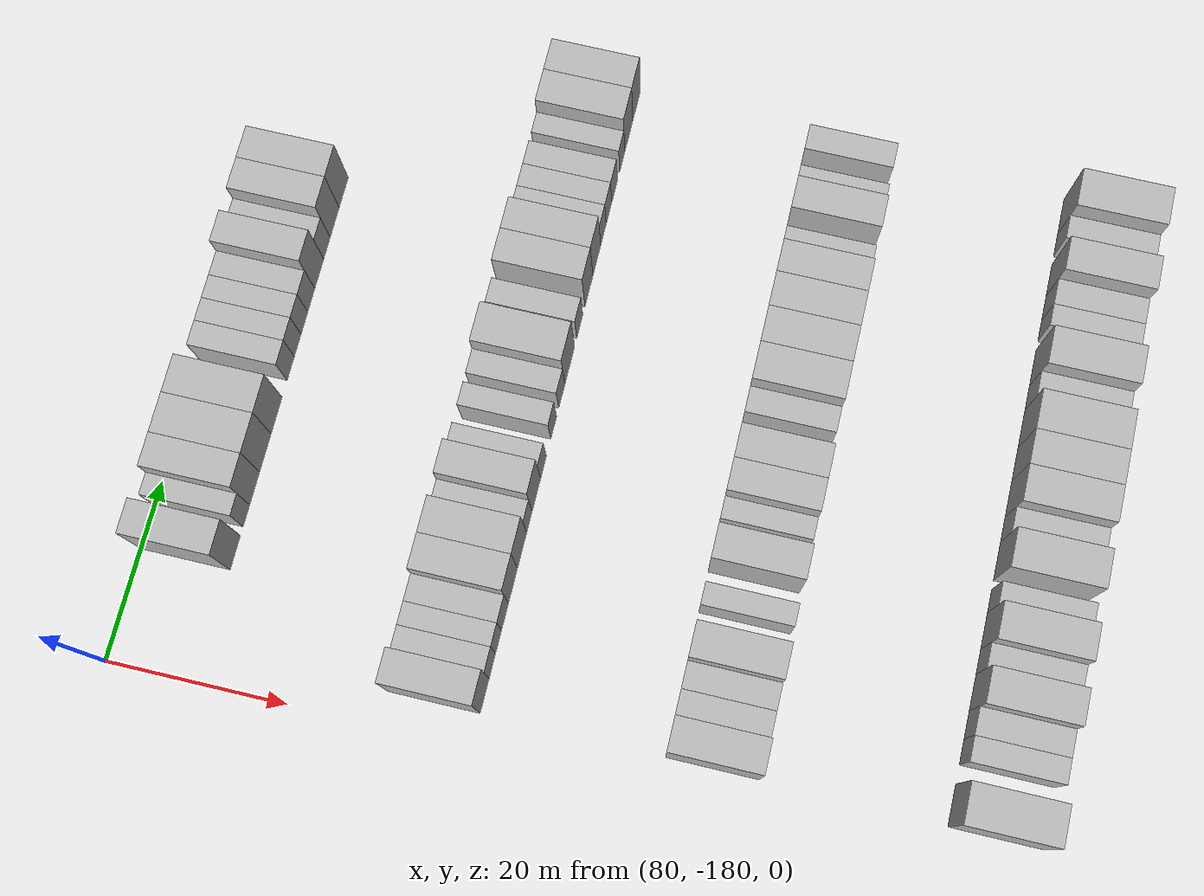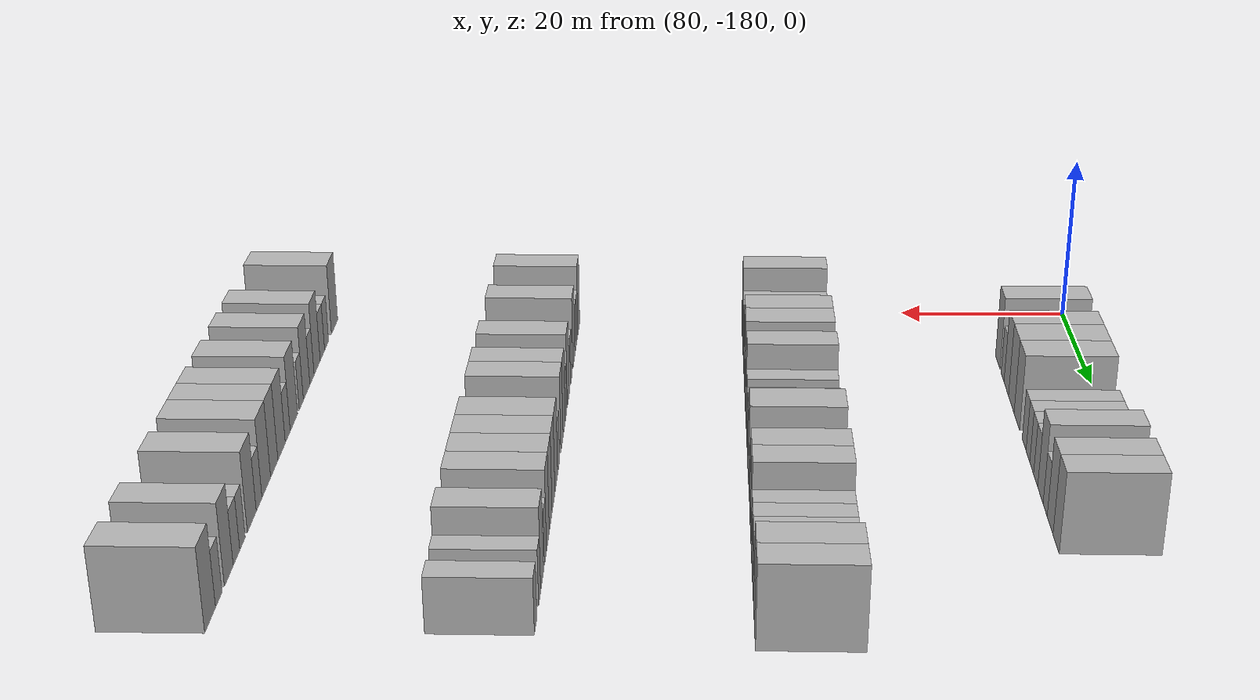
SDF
<sdf version="1.6">
 <world name="default">
  <model name="building_526">
   <static>1</static>
   <pose>85.0000 -165.6904 0 0.000000 0.000000 0.000000</pose>
   <link name="link">
    <pose>0 0 4.50 0 0 0</pose>
    <collision name="collision"><geometry><box><size>10.0000 3.8303 9.0000</size></box></geometry></collision>
    <visual name="visual">
     <cast_shadows>0</cast_shadows>
     <geometry><box><size>10.0000 3.8303 9.0000</size></box></geometry>
     <material>
      <script>
       <uri>model://HANNAS_wall/materials/scripts</uri>
       <uri>model://HANNAS_wall/materials/textures</uri>
       <name>vrc/HANNAS_wall</name>
      </script>
     </material>
    </visual>
   </link>
  </model>
  <model name="building_527">
   <static>1</static>
   <pose>85.0000 -161.5397 0 0.000000 0.000000 0.000000</pose>
   <link name="link">
    <pose>0 0 3.00 0 0 0</pose>
    <collision name="collision"><geometry><box><size>10.0000 2.4710 6.0000</size></box></geometry></collision>
    <visual name="visual">
     <cast_shadows>0</cast_shadows>
     <geometry><box><size>10.0000 2.4710 6.0000</size></box></geometry>
     <material>
      <script>
       <uri>model://HANNAS_wall/materials/scripts</uri>
       <uri>model://HANNAS_wall/materials/textures</uri>
       <name>vrc/HANNAS_wall</name>
      </script>
     </material>
    </visual>
   </link>
  </model>
  <model name="building_528">
   <static>1</static>
   <pose>85.0000 -158.4383 0 0.000000 0.000000 0.000000</pose>
   <link name="link">
    <pose>0 0 4.50 0 0 0</pose>
    <collision name="collision"><geometry><box><size>10.0000 3.7319 9.0000</size></box></geometry></collision>
    <visual name="visual">
     <cast_shadows>0</cast_shadows>
     <geometry><box><size>10.0000 3.7319 9.0000</size></box></geometry>
     <material>
      <script>
       <uri>model://HANNAS_wall/materials/scripts</uri>
       <uri>model://HANNAS_wall/materials/textures</uri>
       <name>vrc/HANNAS_wall</name>
      </script>
     </material>
    </visual>
   </link>
  </model>
  <model name="building_529">
   <static>1</static>
   <pose>85.0000 -154.3488 0 0.000000 0.000000 0.000000</pose>
   <link name="link">
    <pose>0 0 4.50 0 0 0</pose>
    <collision name="collision"><geometry><box><size>10.0000 4.4470 9.0000</size></box></geometry></collision>
    <visual name="visual">
     <cast_shadows>0</cast_shadows>
     <geometry><box><size>10.0000 4.4470 9.0000</size></box></geometry>
     <material>
      <script>
       <uri>model://HANNAS_wall/materials/scripts</uri>
       <uri>model://HANNAS_wall/materials/textures</uri>
       <name>vrc/HANNAS_wall</name>
      </script>
     </material>
    </visual>
   </link>
  </model>
  <model name="building_530">
   <static>1</static>
   <pose>85.0000 -149.9912 0 0.000000 0.000000 0.000000</pose>
   <link name="link">
    <pose>0 0 4.50 0 0 0</pose>
    <collision name="collision"><geometry><box><size>10.0000 4.2682 9.0000</size></box></geometry></collision>
    <visual name="visual">
     <cast_shadows>0</cast_shadows>
     <geometry><box><size>10.0000 4.2682 9.0000</size></box></geometry>
     <material>
      <script>
       <uri>model://HANNAS_wall/materials/scripts</uri>
       <uri>model://HANNAS_wall/materials/textures</uri>
       <name>vrc/HANNAS_wall</name>
      </script>
     </material>
    </visual>
   </link>
  </model>
  <model name="building_531">
   <static>1</static>
   <pose>85.0000 -144.4446 0 0.000000 0.000000 0.000000</pose>
   <link name="link">
    <pose>0 0 3.00 0 0 0</pose>
    <collision name="collision"><geometry><box><size>10.0000 2.8250 6.0000</size></box></geometry></collision>
    <visual name="visual">
     <cast_shadows>0</cast_shadows>
     <geometry><box><size>10.0000 2.8250 6.0000</size></box></geometry>
     <material>
      <script>
       <uri>model://HANNAS_wall/materials/scripts</uri>
       <uri>model://HANNAS_wall/materials/textures</uri>
       <name>vrc/HANNAS_wall</name>
      </script>
     </material>
    </visual>
   </link>
  </model>
  <model name="building_532">
   <static>1</static>
   <pose>85.0000 -141.7109 0 0.000000 0.000000 0.000000</pose>
   <link name="link">
    <pose>0 0 3.00 0 0 0</pose>
    <collision name="collision"><geometry><box><size>10.0000 2.6423 6.0000</size></box></geometry></collision>
    <visual name="visual">
     <cast_shadows>0</cast_shadows>
     <geometry><box><size>10.0000 2.6423 6.0000</size></box></geometry>
     <material>
      <script>
       <uri>model://HANNAS_wall/materials/scripts</uri>
       <uri>model://HANNAS_wall/materials/textures</uri>
       <name>vrc/HANNAS_wall</name>
      </script>
     </material>
    </visual>
   </link>
  </model>
  <model name="building_533">
   <static>1</static>
   <pose>85.0000 -139.0458 0 0.000000 0.000000 0.000000</pose>
   <link name="link">
    <pose>0 0 3.00 0 0 0</pose>
    <collision name="collision"><geometry><box><size>10.0000 2.6880 6.0000</size></box></geometry></collision>
    <visual name="visual">
     <cast_shadows>0</cast_shadows>
     <geometry><box><size>10.0000 2.6880 6.0000</size></box></geometry>
     <material>
      <script>
       <uri>model://HANNAS_wall/materials/scripts</uri>
       <uri>model://HANNAS_wall/materials/textures</uri>
       <name>vrc/HANNAS_wall</name>
      </script>
     </material>
    </visual>
   </link>
  </model>
  <model name="building_534">
   <static>1</static>
   <pose>85.0000 -136.2839 0 0.000000 0.000000 0.000000</pose>
   <link name="link">
    <pose>0 0 3.00 0 0 0</pose>
    <collision name="collision"><geometry><box><size>10.0000 2.8358 6.0000</size></box></geometry></collision>
    <visual name="visual">
     <cast_shadows>0</cast_shadows>
     <geometry><box><size>10.0000 2.8358 6.0000</size></box></geometry>
     <material>
      <script>
       <uri>model://HANNAS_wall/materials/scripts</uri>
       <uri>model://HANNAS_wall/materials/textures</uri>
       <name>vrc/HANNAS_wall</name>
      </script>
     </material>
    </visual>
   </link>
  </model>
  <model name="building_535">
   <static>1</static>
   <pose>85.0000 -133.0587 0 0.000000 0.000000 0.000000</pose>
   <link name="link">
    <pose>0 0 4.50 0 0 0</pose>
    <collision name="collision"><geometry><box><size>10.0000 3.6145 9.0000</size></box></geometry></collision>
    <visual name="visual">
     <cast_shadows>0</cast_shadows>
     <geometry><box><size>10.0000 3.6145 9.0000</size></box></geometry>
     <material>
      <script>
       <uri>model://HANNAS_wall/materials/scripts</uri>
       <uri>model://HANNAS_wall/materials/textures</uri>
       <name>vrc/HANNAS_wall</name>
      </script>
     </material>
    </visual>
   </link>
  </model>
  <model name="building_536">
   <static>1</static>
   <pose>85.0000 -129.9210 0 0.000000 0.000000 0.000000</pose>
   <link name="link">
    <pose>0 0 3.00 0 0 0</pose>
    <collision name="collision"><geometry><box><size>10.0000 2.6611 6.0000</size></box></geometry></collision>
    <visual name="visual">
     <cast_shadows>0</cast_shadows>
     <geometry><box><size>10.0000 2.6611 6.0000</size></box></geometry>
     <material>
      <script>
       <uri>model://HANNAS_wall/materials/scripts</uri>
       <uri>model://HANNAS_wall/materials/textures</uri>
       <name>vrc/HANNAS_wall</name>
      </script>
     </material>
    </visual>
   </link>
  </model>
  <model name="building_537">
   <static>1</static>
   <pose>85.0000 -126.7513 0 0.000000 0.000000 0.000000</pose>
   <link name="link">
    <pose>0 0 4.50 0 0 0</pose>
    <collision name="collision"><geometry><box><size>10.0000 3.6784 9.0000</size></box></geometry></collision>
    <visual name="visual">
     <cast_shadows>0</cast_shadows>
     <geometry><box><size>10.0000 3.6784 9.0000</size></box></geometry>
     <material>
      <script>
       <uri>model://HANNAS_wall/materials/scripts</uri>
       <uri>model://HANNAS_wall/materials/textures</uri>
       <name>vrc/HANNAS_wall</name>
      </script>
     </material>
    </visual>
   </link>
  </model>
  <model name="building_538">
   <static>1</static>
   <pose>85.0000 -123.0262 0 0.000000 0.000000 0.000000</pose>
   <link name="link">
    <pose>0 0 4.50 0 0 0</pose>
    <collision name="collision"><geometry><box><size>10.0000 3.7718 9.0000</size></box></geometry></collision>
    <visual name="visual">
     <cast_shadows>0</cast_shadows>
     <geometry><box><size>10.0000 3.7718 9.0000</size></box></geometry>
     <material>
      <script>
       <uri>model://HANNAS_wall/materials/scripts</uri>
       <uri>model://HANNAS_wall/materials/textures</uri>
       <name>vrc/HANNAS_wall</name>
      </script>
     </material>
    </visual>
   </link>
  </model>
  <model name="building_757">
   <static>1</static>
   <pose>115.0000 -174.3454 0 0.000000 0.000000 0.000000</pose>
   <link name="link">
    <pose>0 0 4.50 0 0 0</pose>
    <collision name="collision"><geometry><box><size>10.0000 3.7316 9.0000</size></box></geometry></collision>
    <visual name="visual">
     <cast_shadows>0</cast_shadows>
     <geometry><box><size>10.0000 3.7316 9.0000</size></box></geometry>
     <material>
      <script>
       <uri>model://HANNAS_wall/materials/scripts</uri>
       <uri>model://HANNAS_wall/materials/textures</uri>
       <name>vrc/HANNAS_wall</name>
      </script>
     </material>
    </visual>
   </link>
  </model>
  <model name="building_758">
   <static>1</static>
   <pose>115.0000 -171.1223 0 0.000000 0.000000 0.000000</pose>
   <link name="link">
    <pose>0 0 3.00 0 0 0</pose>
    <collision name="collision"><geometry><box><size>10.0000 2.7147 6.0000</size></box></geometry></collision>
    <visual name="visual">
     <cast_shadows>0</cast_shadows>
     <geometry><box><size>10.0000 2.7147 6.0000</size></box></geometry>
     <material>
      <script>
       <uri>model://HANNAS_wall/materials/scripts</uri>
       <uri>model://HANNAS_wall/materials/textures</uri>
       <name>vrc/HANNAS_wall</name>
      </script>
     </material>
    </visual>
   </link>
  </model>
  <model name="building_759">
   <static>1</static>
   <pose>115.0000 -168.4990 0 0.000000 0.000000 0.000000</pose>
   <link name="link">
    <pose>0 0 3.00 0 0 0</pose>
    <collision name="collision"><geometry><box><size>10.0000 2.5319 6.0000</size></box></geometry></collision>
    <visual name="visual">
     <cast_shadows>0</cast_shadows>
     <geometry><box><size>10.0000 2.5319 6.0000</size></box></geometry>
     <material>
      <script>
       <uri>model://HANNAS_wall/materials/scripts</uri>
       <uri>model://HANNAS_wall/materials/textures</uri>
       <name>vrc/HANNAS_wall</name>
      </script>
     </material>
    </visual>
   </link>
  </model>
  <model name="building_760">
   <static>1</static>
   <pose>115.0000 -165.7537 0 0.000000 0.000000 0.000000</pose>
   <link name="link">
    <pose>0 0 3.00 0 0 0</pose>
    <collision name="collision"><geometry><box><size>10.0000 2.9588 6.0000</size></box></geometry></collision>
    <visual name="visual">
     <cast_shadows>0</cast_shadows>
     <geometry><box><size>10.0000 2.9588 6.0000</size></box></geometry>
     <material>
      <script>
       <uri>model://HANNAS_wall/materials/scripts</uri>
       <uri>model://HANNAS_wall/materials/textures</uri>
       <name>vrc/HANNAS_wall</name>
      </script>
     </material>
    </visual>
   </link>
  </model>
  <model name="building_761">
   <static>1</static>
   <pose>115.0000 -162.3380 0 0.000000 0.000000 0.000000</pose>
   <link name="link">
    <pose>0 0 4.50 0 0 0</pose>
    <collision name="collision"><geometry><box><size>10.0000 3.8726 9.0000</size></box></geometry></collision>
    <visual name="visual">
     <cast_shadows>0</cast_shadows>
     <geometry><box><size>10.0000 3.8726 9.0000</size></box></geometry>
     <material>
      <script>
       <uri>model://HANNAS_wall/materials/scripts</uri>
       <uri>model://HANNAS_wall/materials/textures</uri>
       <name>vrc/HANNAS_wall</name>
      </script>
     </material>
    </visual>
   </link>
  </model>
  <model name="building_762">
   <static>1</static>
   <pose>115.0000 -158.4075 0 0.000000 0.000000 0.000000</pose>
   <link name="link">
    <pose>0 0 4.50 0 0 0</pose>
    <collision name="collision"><geometry><box><size>10.0000 3.9883 9.0000</size></box></geometry></collision>
    <visual name="visual">
     <cast_shadows>0</cast_shadows>
     <geometry><box><size>10.0000 3.9883 9.0000</size></box></geometry>
     <material>
      <script>
       <uri>model://HANNAS_wall/materials/scripts</uri>
       <uri>model://HANNAS_wall/materials/textures</uri>
       <name>vrc/HANNAS_wall</name>
      </script>
     </material>
    </visual>
   </link>
  </model>
  <model name="building_763">
   <static>1</static>
   <pose>115.0000 -155.1950 0 0.000000 0.000000 0.000000</pose>
   <link name="link">
    <pose>0 0 3.00 0 0 0</pose>
    <collision name="collision"><geometry><box><size>10.0000 2.4366 6.0000</size></box></geometry></collision>
    <visual name="visual">
     <cast_shadows>0</cast_shadows>
     <geometry><box><size>10.0000 2.4366 6.0000</size></box></geometry>
     <material>
      <script>
       <uri>model://HANNAS_wall/materials/scripts</uri>
       <uri>model://HANNAS_wall/materials/textures</uri>
       <name>vrc/HANNAS_wall</name>
      </script>
     </material>
    </visual>
   </link>
  </model>
  <model name="building_764">
   <static>1</static>
   <pose>115.0000 -152.1132 0 0.000000 0.000000 0.000000</pose>
   <link name="link">
    <pose>0 0 4.50 0 0 0</pose>
    <collision name="collision"><geometry><box><size>10.0000 3.7271 9.0000</size></box></geometry></collision>
    <visual name="visual">
     <cast_shadows>0</cast_shadows>
     <geometry><box><size>10.0000 3.7271 9.0000</size></box></geometry>
     <material>
      <script>
       <uri>model://HANNAS_wall/materials/scripts</uri>
       <uri>model://HANNAS_wall/materials/textures</uri>
       <name>vrc/HANNAS_wall</name>
      </script>
     </material>
    </visual>
   </link>
  </model>
  <model name="building_765">
   <static>1</static>
   <pose>115.0000 -148.9574 0 0.000000 0.000000 0.000000</pose>
   <link name="link">
    <pose>0 0 3.00 0 0 0</pose>
    <collision name="collision"><geometry><box><size>10.0000 2.5844 6.0000</size></box></geometry></collision>
    <visual name="visual">
     <cast_shadows>0</cast_shadows>
     <geometry><box><size>10.0000 2.5844 6.0000</size></box></geometry>
     <material>
      <script>
       <uri>model://HANNAS_wall/materials/scripts</uri>
       <uri>model://HANNAS_wall/materials/textures</uri>
       <name>vrc/HANNAS_wall</name>
      </script>
     </material>
    </visual>
   </link>
  </model>
  <model name="building_766">
   <static>1</static>
   <pose>115.0000 -144.3546 0 0.000000 0.000000 0.000000</pose>
   <link name="link">
    <pose>0 0 3.00 0 0 0</pose>
    <collision name="collision"><geometry><box><size>10.0000 2.6212 6.0000</size></box></geometry></collision>
    <visual name="visual">
     <cast_shadows>0</cast_shadows>
     <geometry><box><size>10.0000 2.6212 6.0000</size></box></geometry>
     <material>
      <script>
       <uri>model://HANNAS_wall/materials/scripts</uri>
       <uri>model://HANNAS_wall/materials/textures</uri>
       <name>vrc/HANNAS_wall</name>
      </script>
     </material>
    </visual>
   </link>
  </model>
  <model name="building_767">
   <static>1</static>
   <pose>115.0000 -140.6502 0 0.000000 0.000000 0.000000</pose>
   <link name="link">
    <pose>0 0 3.00 0 0 0</pose>
    <collision name="collision"><geometry><box><size>10.0000 2.7877 6.0000</size></box></geometry></collision>
    <visual name="visual">
     <cast_shadows>0</cast_shadows>
     <geometry><box><size>10.0000 2.7877 6.0000</size></box></geometry>
     <material>
      <script>
       <uri>model://HANNAS_wall/materials/scripts</uri>
       <uri>model://HANNAS_wall/materials/textures</uri>
       <name>vrc/HANNAS_wall</name>
      </script>
     </material>
    </visual>
   </link>
  </model>
  <model name="building_768">
   <static>1</static>
   <pose>115.0000 -137.0310 0 0.000000 0.000000 0.000000</pose>
   <link name="link">
    <pose>0 0 4.50 0 0 0</pose>
    <collision name="collision"><geometry><box><size>10.0000 4.4507 9.0000</size></box></geometry></collision>
    <visual name="visual">
     <cast_shadows>0</cast_shadows>
     <geometry><box><size>10.0000 4.4507 9.0000</size></box></geometry>
     <material>
      <script>
       <uri>model://HANNAS_wall/materials/scripts</uri>
       <uri>model://HANNAS_wall/materials/textures</uri>
       <name>vrc/HANNAS_wall</name>
      </script>
     </material>
    </visual>
   </link>
  </model>
  <model name="building_769">
   <static>1</static>
   <pose>115.0000 -132.3982 0 0.000000 0.000000 0.000000</pose>
   <link name="link">
    <pose>0 0 3.00 0 0 0</pose>
    <collision name="collision"><geometry><box><size>10.0000 2.8148 6.0000</size></box></geometry></collision>
    <visual name="visual">
     <cast_shadows>0</cast_shadows>
     <geometry><box><size>10.0000 2.8148 6.0000</size></box></geometry>
     <material>
      <script>
       <uri>model://HANNAS_wall/materials/scripts</uri>
       <uri>model://HANNAS_wall/materials/textures</uri>
       <name>vrc/HANNAS_wall</name>
      </script>
     </material>
    </visual>
   </link>
  </model>
  <model name="building_770">
   <static>1</static>
   <pose>115.0000 -128.1190 0 0.000000 0.000000 0.000000</pose>
   <link name="link">
    <pose>0 0 4.50 0 0 0</pose>
    <collision name="collision"><geometry><box><size>10.0000 3.7436 9.0000</size></box></geometry></collision>
    <visual name="visual">
     <cast_shadows>0</cast_shadows>
     <geometry><box><size>10.0000 3.7436 9.0000</size></box></geometry>
     <material>
      <script>
       <uri>model://HANNAS_wall/materials/scripts</uri>
       <uri>model://HANNAS_wall/materials/textures</uri>
       <name>vrc/HANNAS_wall</name>
      </script>
     </material>
    </visual>
   </link>
  </model>
  <model name="building_771">
   <static>1</static>
   <pose>115.0000 -124.4085 0 0.000000 0.000000 0.000000</pose>
   <link name="link">
    <pose>0 0 4.50 0 0 0</pose>
    <collision name="collision"><geometry><box><size>10.0000 3.6773 9.0000</size></box></geometry></collision>
    <visual name="visual">
     <cast_shadows>0</cast_shadows>
     <geometry><box><size>10.0000 3.6773 9.0000</size></box></geometry>
     <material>
      <script>
       <uri>model://HANNAS_wall/materials/scripts</uri>
       <uri>model://HANNAS_wall/materials/textures</uri>
       <name>vrc/HANNAS_wall</name>
      </script>
     </material>
    </visual>
   </link>
  </model>
  <model name="building_772">
   <static>1</static>
   <pose>115.0000 -121.2611 0 0.000000 0.000000 0.000000</pose>
   <link name="link">
    <pose>0 0 3.00 0 0 0</pose>
    <collision name="collision"><geometry><box><size>10.0000 2.6176 6.0000</size></box></geometry></collision>
    <visual name="visual">
     <cast_shadows>0</cast_shadows>
     <geometry><box><size>10.0000 2.6176 6.0000</size></box></geometry>
     <material>
      <script>
       <uri>model://HANNAS_wall/materials/scripts</uri>
       <uri>model://HANNAS_wall/materials/textures</uri>
       <name>vrc/HANNAS_wall</name>
      </script>
     </material>
    </visual>
   </link>
  </model>
  <model name="building_773">
   <static>1</static>
   <pose>115.0000 -118.6068 0 0.000000 0.000000 0.000000</pose>
   <link name="link">
    <pose>0 0 3.00 0 0 0</pose>
    <collision name="collision"><geometry><box><size>10.0000 2.6911 6.0000</size></box></geometry></collision>
    <visual name="visual">
     <cast_shadows>0</cast_shadows>
     <geometry><box><size>10.0000 2.6911 6.0000</size></box></geometry>
     <material>
      <script>
       <uri>model://HANNAS_wall/materials/scripts</uri>
       <uri>model://HANNAS_wall/materials/textures</uri>
       <name>vrc/HANNAS_wall</name>
      </script>
     </material>
    </visual>
   </link>
  </model>
  <model name="building_774">
   <static>1</static>
   <pose>115.0000 -115.8497 0 0.000000 0.000000 0.000000</pose>
   <link name="link">
    <pose>0 0 3.00 0 0 0</pose>
    <collision name="collision"><geometry><box><size>10.0000 2.8231 6.0000</size></box></geometry></collision>
    <visual name="visual">
     <cast_shadows>0</cast_shadows>
     <geometry><box><size>10.0000 2.8231 6.0000</size></box></geometry>
     <material>
      <script>
       <uri>model://HANNAS_wall/materials/scripts</uri>
       <uri>model://HANNAS_wall/materials/textures</uri>
       <name>vrc/HANNAS_wall</name>
      </script>
     </material>
    </visual>
   </link>
  </model>
  <model name="building_775">
   <static>1</static>
   <pose>115.0000 -112.1913 0 0.000000 0.000000 0.000000</pose>
   <link name="link">
    <pose>0 0 3.00 0 0 0</pose>
    <collision name="collision"><geometry><box><size>10.0000 2.4937 6.0000</size></box></geometry></collision>
    <visual name="visual">
     <cast_shadows>0</cast_shadows>
     <geometry><box><size>10.0000 2.4937 6.0000</size></box></geometry>
     <material>
      <script>
       <uri>model://HANNAS_wall/materials/scripts</uri>
       <uri>model://HANNAS_wall/materials/textures</uri>
       <name>vrc/HANNAS_wall</name>
      </script>
     </material>
    </visual>
   </link>
  </model>
  <model name="building_776">
   <static>1</static>
   <pose>115.0000 -109.0128 0 0.000000 0.000000 0.000000</pose>
   <link name="link">
    <pose>0 0 4.50 0 0 0</pose>
    <collision name="collision"><geometry><box><size>10.0000 3.8631 9.0000</size></box></geometry></collision>
    <visual name="visual">
     <cast_shadows>0</cast_shadows>
     <geometry><box><size>10.0000 3.8631 9.0000</size></box></geometry>
     <material>
      <script>
       <uri>model://HANNAS_wall/materials/scripts</uri>
       <uri>model://HANNAS_wall/materials/textures</uri>
       <name>vrc/HANNAS_wall</name>
      </script>
     </material>
    </visual>
   </link>
  </model>
  <model name="building_777">
   <static>1</static>
   <pose>115.0000 -105.1990 0 0.000000 0.000000 0.000000</pose>
   <link name="link">
    <pose>0 0 4.50 0 0 0</pose>
    <collision name="collision"><geometry><box><size>10.0000 3.7647 9.0000</size></box></geometry></collision>
    <visual name="visual">
     <cast_shadows>0</cast_shadows>
     <geometry><box><size>10.0000 3.7647 9.0000</size></box></geometry>
     <material>
      <script>
       <uri>model://HANNAS_wall/materials/scripts</uri>
       <uri>model://HANNAS_wall/materials/textures</uri>
       <name>vrc/HANNAS_wall</name>
      </script>
     </material>
    </visual>
   </link>
  </model>
  <model name="building_991">
   <static>1</static>
   <pose>145.0000 -174.2577 0 0.000000 0.000000 0.000000</pose>
   <link name="link">
    <pose>0 0 4.50 0 0 0</pose>
    <collision name="collision"><geometry><box><size>10.0000 3.7965 9.0000</size></box></geometry></collision>
    <visual name="visual">
     <cast_shadows>0</cast_shadows>
     <geometry><box><size>10.0000 3.7965 9.0000</size></box></geometry>
     <material>
      <script>
       <uri>model://HANNAS_wall/materials/scripts</uri>
       <uri>model://HANNAS_wall/materials/textures</uri>
       <name>vrc/HANNAS_wall</name>
      </script>
     </material>
    </visual>
   </link>
  </model>
  <model name="building_992">
   <static>1</static>
   <pose>145.0000 -170.8781 0 0.000000 0.000000 0.000000</pose>
   <link name="link">
    <pose>0 0 3.00 0 0 0</pose>
    <collision name="collision"><geometry><box><size>10.0000 2.9628 6.0000</size></box></geometry></collision>
    <visual name="visual">
     <cast_shadows>0</cast_shadows>
     <geometry><box><size>10.0000 2.9628 6.0000</size></box></geometry>
     <material>
      <script>
       <uri>model://HANNAS_wall/materials/scripts</uri>
       <uri>model://HANNAS_wall/materials/textures</uri>
       <name>vrc/HANNAS_wall</name>
      </script>
     </material>
    </visual>
   </link>
  </model>
  <model name="building_993">
   <static>1</static>
   <pose>145.0000 -167.9231 0 0.000000 0.000000 0.000000</pose>
   <link name="link">
    <pose>0 0 3.00 0 0 0</pose>
    <collision name="collision"><geometry><box><size>10.0000 2.9472 6.0000</size></box></geometry></collision>
    <visual name="visual">
     <cast_shadows>0</cast_shadows>
     <geometry><box><size>10.0000 2.9472 6.0000</size></box></geometry>
     <material>
      <script>
       <uri>model://HANNAS_wall/materials/scripts</uri>
       <uri>model://HANNAS_wall/materials/textures</uri>
       <name>vrc/HANNAS_wall</name>
      </script>
     </material>
    </visual>
   </link>
  </model>
  <model name="building_994">
   <static>1</static>
   <pose>145.0000 -164.5054 0 0.000000 0.000000 0.000000</pose>
   <link name="link">
    <pose>0 0 4.50 0 0 0</pose>
    <collision name="collision"><geometry><box><size>10.0000 3.8881 9.0000</size></box></geometry></collision>
    <visual name="visual">
     <cast_shadows>0</cast_shadows>
     <geometry><box><size>10.0000 3.8881 9.0000</size></box></geometry>
     <material>
      <script>
       <uri>model://HANNAS_wall/materials/scripts</uri>
       <uri>model://HANNAS_wall/materials/textures</uri>
       <name>vrc/HANNAS_wall</name>
      </script>
     </material>
    </visual>
   </link>
  </model>
  <model name="building_995">
   <static>1</static>
   <pose>145.0000 -159.3108 0 0.000000 0.000000 0.000000</pose>
   <link name="link">
    <pose>0 0 3.00 0 0 0</pose>
    <collision name="collision"><geometry><box><size>10.0000 2.5013 6.0000</size></box></geometry></collision>
    <visual name="visual">
     <cast_shadows>0</cast_shadows>
     <geometry><box><size>10.0000 2.5013 6.0000</size></box></geometry>
     <material>
      <script>
       <uri>model://HANNAS_wall/materials/scripts</uri>
       <uri>model://HANNAS_wall/materials/textures</uri>
       <name>vrc/HANNAS_wall</name>
      </script>
     </material>
    </visual>
   </link>
  </model>
  <model name="building_996">
   <static>1</static>
   <pose>145.0000 -154.1515 0 0.000000 0.000000 0.000000</pose>
   <link name="link">
    <pose>0 0 4.50 0 0 0</pose>
    <collision name="collision"><geometry><box><size>10.0000 3.8172 9.0000</size></box></geometry></collision>
    <visual name="visual">
     <cast_shadows>0</cast_shadows>
     <geometry><box><size>10.0000 3.8172 9.0000</size></box></geometry>
     <material>
      <script>
       <uri>model://HANNAS_wall/materials/scripts</uri>
       <uri>model://HANNAS_wall/materials/textures</uri>
       <name>vrc/HANNAS_wall</name>
      </script>
     </material>
    </visual>
   </link>
  </model>
  <model name="building_997">
   <static>1</static>
   <pose>145.0000 -150.0039 0 0.000000 0.000000 0.000000</pose>
   <link name="link">
    <pose>0 0 3.00 0 0 0</pose>
    <collision name="collision"><geometry><box><size>10.0000 2.4780 6.0000</size></box></geometry></collision>
    <visual name="visual">
     <cast_shadows>0</cast_shadows>
     <geometry><box><size>10.0000 2.4780 6.0000</size></box></geometry>
     <material>
      <script>
       <uri>model://HANNAS_wall/materials/scripts</uri>
       <uri>model://HANNAS_wall/materials/textures</uri>
       <name>vrc/HANNAS_wall</name>
      </script>
     </material>
    </visual>
   </link>
  </model>
  <model name="building_998">
   <static>1</static>
   <pose>145.0000 -146.9643 0 0.000000 0.000000 0.000000</pose>
   <link name="link">
    <pose>0 0 4.50 0 0 0</pose>
    <collision name="collision"><geometry><box><size>10.0000 3.6012 9.0000</size></box></geometry></collision>
    <visual name="visual">
     <cast_shadows>0</cast_shadows>
     <geometry><box><size>10.0000 3.6012 9.0000</size></box></geometry>
     <material>
      <script>
       <uri>model://HANNAS_wall/materials/scripts</uri>
       <uri>model://HANNAS_wall/materials/textures</uri>
       <name>vrc/HANNAS_wall</name>
      </script>
     </material>
    </visual>
   </link>
  </model>
  <model name="building_999">
   <static>1</static>
   <pose>145.0000 -143.2689 0 0.000000 0.000000 0.000000</pose>
   <link name="link">
    <pose>0 0 4.50 0 0 0</pose>
    <collision name="collision"><geometry><box><size>10.0000 3.7896 9.0000</size></box></geometry></collision>
    <visual name="visual">
     <cast_shadows>0</cast_shadows>
     <geometry><box><size>10.0000 3.7896 9.0000</size></box></geometry>
     <material>
      <script>
       <uri>model://HANNAS_wall/materials/scripts</uri>
       <uri>model://HANNAS_wall/materials/textures</uri>
       <name>vrc/HANNAS_wall</name>
      </script>
     </material>
    </visual>
   </link>
  </model>
  <model name="building_1000">
   <static>1</static>
   <pose>145.0000 -137.9165 0 0.000000 0.000000 0.000000</pose>
   <link name="link">
    <pose>0 0 3.00 0 0 0</pose>
    <collision name="collision"><geometry><box><size>10.0000 2.9152 6.0000</size></box></geometry></collision>
    <visual name="visual">
     <cast_shadows>0</cast_shadows>
     <geometry><box><size>10.0000 2.9152 6.0000</size></box></geometry>
     <material>
      <script>
       <uri>model://HANNAS_wall/materials/scripts</uri>
       <uri>model://HANNAS_wall/materials/textures</uri>
       <name>vrc/HANNAS_wall</name>
      </script>
     </material>
    </visual>
   </link>
  </model>
  <model name="building_1001">
   <static>1</static>
   <pose>145.0000 -134.3388 0 0.000000 0.000000 0.000000</pose>
   <link name="link">
    <pose>0 0 4.50 0 0 0</pose>
    <collision name="collision"><geometry><box><size>10.0000 4.2404 9.0000</size></box></geometry></collision>
    <visual name="visual">
     <cast_shadows>0</cast_shadows>
     <geometry><box><size>10.0000 4.2404 9.0000</size></box></geometry>
     <material>
      <script>
       <uri>model://HANNAS_wall/materials/scripts</uri>
       <uri>model://HANNAS_wall/materials/textures</uri>
       <name>vrc/HANNAS_wall</name>
      </script>
     </material>
    </visual>
   </link>
  </model>
  <model name="building_1002">
   <static>1</static>
   <pose>145.0000 -130.1775 0 0.000000 0.000000 0.000000</pose>
   <link name="link">
    <pose>0 0 4.50 0 0 0</pose>
    <collision name="collision"><geometry><box><size>10.0000 4.0822 9.0000</size></box></geometry></collision>
    <visual name="visual">
     <cast_shadows>0</cast_shadows>
     <geometry><box><size>10.0000 4.0822 9.0000</size></box></geometry>
     <material>
      <script>
       <uri>model://HANNAS_wall/materials/scripts</uri>
       <uri>model://HANNAS_wall/materials/textures</uri>
       <name>vrc/HANNAS_wall</name>
      </script>
     </material>
    </visual>
   </link>
  </model>
  <model name="building_1003">
   <static>1</static>
   <pose>145.0000 -126.1565 0 0.000000 0.000000 0.000000</pose>
   <link name="link">
    <pose>0 0 4.50 0 0 0</pose>
    <collision name="collision"><geometry><box><size>10.0000 3.9598 9.0000</size></box></geometry></collision>
    <visual name="visual">
     <cast_shadows>0</cast_shadows>
     <geometry><box><size>10.0000 3.9598 9.0000</size></box></geometry>
     <material>
      <script>
       <uri>model://HANNAS_wall/materials/scripts</uri>
       <uri>model://HANNAS_wall/materials/textures</uri>
       <name>vrc/HANNAS_wall</name>
      </script>
     </material>
    </visual>
   </link>
  </model>
  <model name="building_1004">
   <static>1</static>
   <pose>145.0000 -122.3041 0 0.000000 0.000000 0.000000</pose>
   <link name="link">
    <pose>0 0 4.50 0 0 0</pose>
    <collision name="collision"><geometry><box><size>10.0000 3.7449 9.0000</size></box></geometry></collision>
    <visual name="visual">
     <cast_shadows>0</cast_shadows>
     <geometry><box><size>10.0000 3.7449 9.0000</size></box></geometry>
     <material>
      <script>
       <uri>model://HANNAS_wall/materials/scripts</uri>
       <uri>model://HANNAS_wall/materials/textures</uri>
       <name>vrc/HANNAS_wall</name>
      </script>
     </material>
    </visual>
   </link>
  </model>
  <model name="building_1005">
   <static>1</static>
   <pose>145.0000 -119.0727 0 0.000000 0.000000 0.000000</pose>
   <link name="link">
    <pose>0 0 3.00 0 0 0</pose>
    <collision name="collision"><geometry><box><size>10.0000 2.7179 6.0000</size></box></geometry></collision>
    <visual name="visual">
     <cast_shadows>0</cast_shadows>
     <geometry><box><size>10.0000 2.7179 6.0000</size></box></geometry>
     <material>
      <script>
       <uri>model://HANNAS_wall/materials/scripts</uri>
       <uri>model://HANNAS_wall/materials/textures</uri>
       <name>vrc/HANNAS_wall</name>
      </script>
     </material>
    </visual>
   </link>
  </model>
  <model name="building_1006">
   <static>1</static>
   <pose>145.0000 -114.8422 0 0.000000 0.000000 0.000000</pose>
   <link name="link">
    <pose>0 0 4.50 0 0 0</pose>
    <collision name="collision"><geometry><box><size>10.0000 3.7431 9.0000</size></box></geometry></collision>
    <visual name="visual">
     <cast_shadows>0</cast_shadows>
     <geometry><box><size>10.0000 3.7431 9.0000</size></box></geometry>
     <material>
      <script>
       <uri>model://HANNAS_wall/materials/scripts</uri>
       <uri>model://HANNAS_wall/materials/textures</uri>
       <name>vrc/HANNAS_wall</name>
      </script>
     </material>
    </visual>
   </link>
  </model>
  <model name="building_1007">
   <static>1</static>
   <pose>145.0000 -111.6651 0 0.000000 0.000000 0.000000</pose>
   <link name="link">
    <pose>0 0 3.00 0 0 0</pose>
    <collision name="collision"><geometry><box><size>10.0000 2.6111 6.0000</size></box></geometry></collision>
    <visual name="visual">
     <cast_shadows>0</cast_shadows>
     <geometry><box><size>10.0000 2.6111 6.0000</size></box></geometry>
     <material>
      <script>
       <uri>model://HANNAS_wall/materials/scripts</uri>
       <uri>model://HANNAS_wall/materials/textures</uri>
       <name>vrc/HANNAS_wall</name>
      </script>
     </material>
    </visual>
   </link>
  </model>
  <model name="building_1008">
   <static>1</static>
   <pose>145.0000 -106.8743 0 0.000000 0.000000 0.000000</pose>
   <link name="link">
    <pose>0 0 3.00 0 0 0</pose>
    <collision name="collision"><geometry><box><size>10.0000 2.9703 6.0000</size></box></geometry></collision>
    <visual name="visual">
     <cast_shadows>0</cast_shadows>
     <geometry><box><size>10.0000 2.9703 6.0000</size></box></geometry>
     <material>
      <script>
       <uri>model://HANNAS_wall/materials/scripts</uri>
       <uri>model://HANNAS_wall/materials/textures</uri>
       <name>vrc/HANNAS_wall</name>
      </script>
     </material>
    </visual>
   </link>
  </model>
  <model name="building_1223">
   <static>1</static>
   <pose>175.0000 -174.1112 0 0.000000 0.000000 0.000000</pose>
   <link name="link">
    <pose>0 0 4.50 0 0 0</pose>
    <collision name="collision"><geometry><box><size>10.0000 4.4536 9.0000</size></box></geometry></collision>
    <visual name="visual">
     <cast_shadows>0</cast_shadows>
     <geometry><box><size>10.0000 4.4536 9.0000</size></box></geometry>
     <material>
      <script>
       <uri>model://HANNAS_wall/materials/scripts</uri>
       <uri>model://HANNAS_wall/materials/textures</uri>
       <name>vrc/HANNAS_wall</name>
      </script>
     </material>
    </visual>
   </link>
  </model>
  <model name="building_1224">
   <static>1</static>
   <pose>175.0000 -168.5165 0 0.000000 0.000000 0.000000</pose>
   <link name="link">
    <pose>0 0 3.00 0 0 0</pose>
    <collision name="collision"><geometry><box><size>10.0000 2.7358 6.0000</size></box></geometry></collision>
    <visual name="visual">
     <cast_shadows>0</cast_shadows>
     <geometry><box><size>10.0000 2.7358 6.0000</size></box></geometry>
     <material>
      <script>
       <uri>model://HANNAS_wall/materials/scripts</uri>
       <uri>model://HANNAS_wall/materials/textures</uri>
       <name>vrc/HANNAS_wall</name>
      </script>
     </material>
    </visual>
   </link>
  </model>
  <model name="building_1225">
   <static>1</static>
   <pose>175.0000 -165.6530 0 0.000000 0.000000 0.000000</pose>
   <link name="link">
    <pose>0 0 3.00 0 0 0</pose>
    <collision name="collision"><geometry><box><size>10.0000 2.9912 6.0000</size></box></geometry></collision>
    <visual name="visual">
     <cast_shadows>0</cast_shadows>
     <geometry><box><size>10.0000 2.9912 6.0000</size></box></geometry>
     <material>
      <script>
       <uri>model://HANNAS_wall/materials/scripts</uri>
       <uri>model://HANNAS_wall/materials/textures</uri>
       <name>vrc/HANNAS_wall</name>
      </script>
     </material>
    </visual>
   </link>
  </model>
  <model name="building_1226">
   <static>1</static>
   <pose>175.0000 -162.1811 0 0.000000 0.000000 0.000000</pose>
   <link name="link">
    <pose>0 0 4.50 0 0 0</pose>
    <collision name="collision"><geometry><box><size>10.0000 3.9526 9.0000</size></box></geometry></collision>
    <visual name="visual">
     <cast_shadows>0</cast_shadows>
     <geometry><box><size>10.0000 3.9526 9.0000</size></box></geometry>
     <material>
      <script>
       <uri>model://HANNAS_wall/materials/scripts</uri>
       <uri>model://HANNAS_wall/materials/textures</uri>
       <name>vrc/HANNAS_wall</name>
      </script>
     </material>
    </visual>
   </link>
  </model>
  <model name="building_1227">
   <static>1</static>
   <pose>175.0000 -158.8497 0 0.000000 0.000000 0.000000</pose>
   <link name="link">
    <pose>0 0 3.00 0 0 0</pose>
    <collision name="collision"><geometry><box><size>10.0000 2.7102 6.0000</size></box></geometry></collision>
    <visual name="visual">
     <cast_shadows>0</cast_shadows>
     <geometry><box><size>10.0000 2.7102 6.0000</size></box></geometry>
     <material>
      <script>
       <uri>model://HANNAS_wall/materials/scripts</uri>
       <uri>model://HANNAS_wall/materials/textures</uri>
       <name>vrc/HANNAS_wall</name>
      </script>
     </material>
    </visual>
   </link>
  </model>
  <model name="building_1228">
   <static>1</static>
   <pose>175.0000 -155.4913 0 0.000000 0.000000 0.000000</pose>
   <link name="link">
    <pose>0 0 4.50 0 0 0</pose>
    <collision name="collision"><geometry><box><size>10.0000 4.0066 9.0000</size></box></geometry></collision>
    <visual name="visual">
     <cast_shadows>0</cast_shadows>
     <geometry><box><size>10.0000 4.0066 9.0000</size></box></geometry>
     <material>
      <script>
       <uri>model://HANNAS_wall/materials/scripts</uri>
       <uri>model://HANNAS_wall/materials/textures</uri>
       <name>vrc/HANNAS_wall</name>
      </script>
     </material>
    </visual>
   </link>
  </model>
  <model name="building_1229">
   <static>1</static>
   <pose>175.0000 -152.2262 0 0.000000 0.000000 0.000000</pose>
   <link name="link">
    <pose>0 0 3.00 0 0 0</pose>
    <collision name="collision"><geometry><box><size>10.0000 2.5236 6.0000</size></box></geometry></collision>
    <visual name="visual">
     <cast_shadows>0</cast_shadows>
     <geometry><box><size>10.0000 2.5236 6.0000</size></box></geometry>
     <material>
      <script>
       <uri>model://HANNAS_wall/materials/scripts</uri>
       <uri>model://HANNAS_wall/materials/textures</uri>
       <name>vrc/HANNAS_wall</name>
      </script>
     </material>
    </visual>
   </link>
  </model>
  <model name="building_1230">
   <static>1</static>
   <pose>175.0000 -147.8191 0 0.000000 0.000000 0.000000</pose>
   <link name="link">
    <pose>0 0 4.50 0 0 0</pose>
    <collision name="collision"><geometry><box><size>10.0000 4.2907 9.0000</size></box></geometry></collision>
    <visual name="visual">
     <cast_shadows>0</cast_shadows>
     <geometry><box><size>10.0000 4.2907 9.0000</size></box></geometry>
     <material>
      <script>
       <uri>model://HANNAS_wall/materials/scripts</uri>
       <uri>model://HANNAS_wall/materials/textures</uri>
       <name>vrc/HANNAS_wall</name>
      </script>
     </material>
    </visual>
   </link>
  </model>
  <model name="building_1231">
   <static>1</static>
   <pose>175.0000 -144.2809 0 0.000000 0.000000 0.000000</pose>
   <link name="link">
    <pose>0 0 3.00 0 0 0</pose>
    <collision name="collision"><geometry><box><size>10.0000 2.7856 6.0000</size></box></geometry></collision>
    <visual name="visual">
     <cast_shadows>0</cast_shadows>
     <geometry><box><size>10.0000 2.7856 6.0000</size></box></geometry>
     <material>
      <script>
       <uri>model://HANNAS_wall/materials/scripts</uri>
       <uri>model://HANNAS_wall/materials/textures</uri>
       <name>vrc/HANNAS_wall</name>
      </script>
     </material>
    </visual>
   </link>
  </model>
  <model name="building_1232">
   <static>1</static>
   <pose>175.0000 -140.8611 0 0.000000 0.000000 0.000000</pose>
   <link name="link">
    <pose>0 0 4.50 0 0 0</pose>
    <collision name="collision"><geometry><box><size>10.0000 4.0541 9.0000</size></box></geometry></collision>
    <visual name="visual">
     <cast_shadows>0</cast_shadows>
     <geometry><box><size>10.0000 4.0541 9.0000</size></box></geometry>
     <material>
      <script>
       <uri>model://HANNAS_wall/materials/scripts</uri>
       <uri>model://HANNAS_wall/materials/textures</uri>
       <name>vrc/HANNAS_wall</name>
      </script>
     </material>
    </visual>
   </link>
  </model>
  <model name="building_1233">
   <static>1</static>
   <pose>175.0000 -136.8934 0 0.000000 0.000000 0.000000</pose>
   <link name="link">
    <pose>0 0 4.50 0 0 0</pose>
    <collision name="collision"><geometry><box><size>10.0000 3.8813 9.0000</size></box></geometry></collision>
    <visual name="visual">
     <cast_shadows>0</cast_shadows>
     <geometry><box><size>10.0000 3.8813 9.0000</size></box></geometry>
     <material>
      <script>
       <uri>model://HANNAS_wall/materials/scripts</uri>
       <uri>model://HANNAS_wall/materials/textures</uri>
       <name>vrc/HANNAS_wall</name>
      </script>
     </material>
    </visual>
   </link>
  </model>
  <model name="building_1234">
   <static>1</static>
   <pose>175.0000 -132.7378 0 0.000000 0.000000 0.000000</pose>
   <link name="link">
    <pose>0 0 4.50 0 0 0</pose>
    <collision name="collision"><geometry><box><size>10.0000 4.4298 9.0000</size></box></geometry></collision>
    <visual name="visual">
     <cast_shadows>0</cast_shadows>
     <geometry><box><size>10.0000 4.4298 9.0000</size></box></geometry>
     <material>
      <script>
       <uri>model://HANNAS_wall/materials/scripts</uri>
       <uri>model://HANNAS_wall/materials/textures</uri>
       <name>vrc/HANNAS_wall</name>
      </script>
     </material>
    </visual>
   </link>
  </model>
  <model name="building_1235">
   <static>1</static>
   <pose>175.0000 -129.1043 0 0.000000 0.000000 0.000000</pose>
   <link name="link">
    <pose>0 0 3.00 0 0 0</pose>
    <collision name="collision"><geometry><box><size>10.0000 2.8373 6.0000</size></box></geometry></collision>
    <visual name="visual">
     <cast_shadows>0</cast_shadows>
     <geometry><box><size>10.0000 2.8373 6.0000</size></box></geometry>
     <material>
      <script>
       <uri>model://HANNAS_wall/materials/scripts</uri>
       <uri>model://HANNAS_wall/materials/textures</uri>
       <name>vrc/HANNAS_wall</name>
      </script>
     </material>
    </visual>
   </link>
  </model>
  <model name="building_1236">
   <static>1</static>
   <pose>175.0000 -125.5388 0 0.000000 0.000000 0.000000</pose>
   <link name="link">
    <pose>0 0 4.50 0 0 0</pose>
    <collision name="collision"><geometry><box><size>10.0000 4.2937 9.0000</size></box></geometry></collision>
    <visual name="visual">
     <cast_shadows>0</cast_shadows>
     <geometry><box><size>10.0000 4.2937 9.0000</size></box></geometry>
     <material>
      <script>
       <uri>model://HANNAS_wall/materials/scripts</uri>
       <uri>model://HANNAS_wall/materials/textures</uri>
       <name>vrc/HANNAS_wall</name>
      </script>
     </material>
    </visual>
   </link>
  </model>
  <model name="building_1237">
   <static>1</static>
   <pose>175.0000 -121.1485 0 0.000000 0.000000 0.000000</pose>
   <link name="link">
    <pose>0 0 3.00 0 0 0</pose>
    <collision name="collision"><geometry><box><size>10.0000 2.4870 6.0000</size></box></geometry></collision>
    <visual name="visual">
     <cast_shadows>0</cast_shadows>
     <geometry><box><size>10.0000 2.4870 6.0000</size></box></geometry>
     <material>
      <script>
       <uri>model://HANNAS_wall/materials/scripts</uri>
       <uri>model://HANNAS_wall/materials/textures</uri>
       <name>vrc/HANNAS_wall</name>
      </script>
     </material>
    </visual>
   </link>
  </model>
  <model name="building_1238">
   <static>1</static>
   <pose>175.0000 -118.4304 0 0.000000 0.000000 0.000000</pose>
   <link name="link">
    <pose>0 0 3.00 0 0 0</pose>
    <collision name="collision"><geometry><box><size>10.0000 2.9493 6.0000</size></box></geometry></collision>
    <visual name="visual">
     <cast_shadows>0</cast_shadows>
     <geometry><box><size>10.0000 2.9493 6.0000</size></box></geometry>
     <material>
      <script>
       <uri>model://HANNAS_wall/materials/scripts</uri>
       <uri>model://HANNAS_wall/materials/textures</uri>
       <name>vrc/HANNAS_wall</name>
      </script>
     </material>
    </visual>
   </link>
  </model>
  <model name="building_1239">
   <static>1</static>
   <pose>175.0000 -115.0308 0 0.000000 0.000000 0.000000</pose>
   <link name="link">
    <pose>0 0 4.50 0 0 0</pose>
    <collision name="collision"><geometry><box><size>10.0000 3.8499 9.0000</size></box></geometry></collision>
    <visual name="visual">
     <cast_shadows>0</cast_shadows>
     <geometry><box><size>10.0000 3.8499 9.0000</size></box></geometry>
     <material>
      <script>
       <uri>model://HANNAS_wall/materials/scripts</uri>
       <uri>model://HANNAS_wall/materials/textures</uri>
       <name>vrc/HANNAS_wall</name>
      </script>
     </material>
    </visual>
   </link>
  </model>
  <model name="building_1240">
   <static>1</static>
   <pose>175.0000 -110.7586 0 0.000000 0.000000 0.000000</pose>
   <link name="link">
    <pose>0 0 3.00 0 0 0</pose>
    <collision name="collision"><geometry><box><size>10.0000 2.6943 6.0000</size></box></geometry></collision>
    <visual name="visual">
     <cast_shadows>0</cast_shadows>
     <geometry><box><size>10.0000 2.6943 6.0000</size></box></geometry>
     <material>
      <script>
       <uri>model://HANNAS_wall/materials/scripts</uri>
       <uri>model://HANNAS_wall/materials/textures</uri>
       <name>vrc/HANNAS_wall</name>
      </script>
     </material>
    </visual>
   </link>
  </model>
  <model name="building_1241">
   <static>1</static>
   <pose>175.0000 -107.2153 0 0.000000 0.000000 0.000000</pose>
   <link name="link">
    <pose>0 0 4.50 0 0 0</pose>
    <collision name="collision"><geometry><box><size>10.0000 4.3925 9.0000</size></box></geometry></collision>
    <visual name="visual">
     <cast_shadows>0</cast_shadows>
     <geometry><box><size>10.0000 4.3925 9.0000</size></box></geometry>
     <material>
      <script>
       <uri>model://HANNAS_wall/materials/scripts</uri>
       <uri>model://HANNAS_wall/materials/textures</uri>
       <name>vrc/HANNAS_wall</name>
      </script>
     </material>
    </visual>
   </link>
  </model>
 </world>
</sdf>
